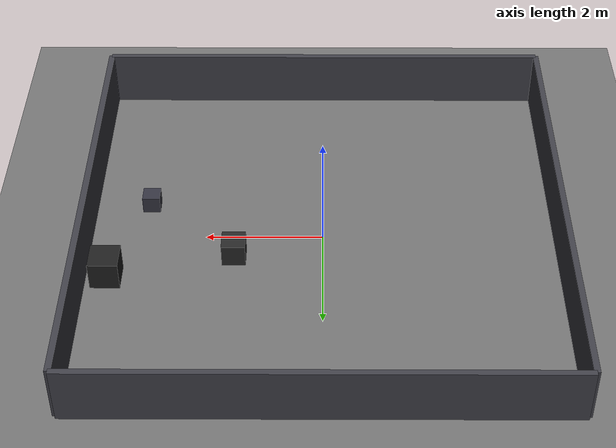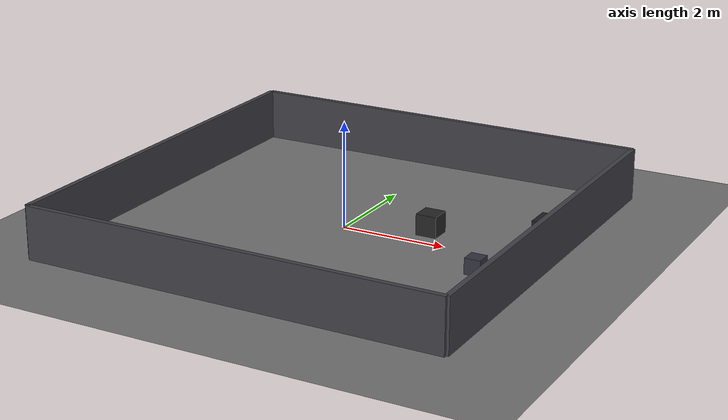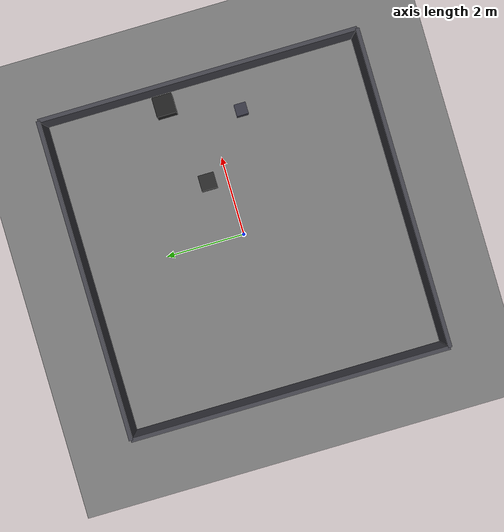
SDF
<?xml version="1.0"?>
<sdf version="1.6">
  <world name="dim_course">

    <!-- ========== Gazebo Sim 系统插件 ========== -->
    <plugin filename="gz-sim-physics-system"
            name="gz::sim::systems::Physics"/>
    <plugin filename="gz-sim-user-commands-system"
            name="gz::sim::systems::UserCommands"/>
    <plugin filename="gz-sim-scene-broadcaster-system"
            name="gz::sim::systems::SceneBroadcaster"/>
    <!-- 相机/激光雷达等渲染传感器必须由 Sensors 系统插件驱动 -->
    <plugin filename="gz-sim-sensors-system"
            name="gz::sim::systems::Sensors">
      <render_engine>ogre2</render_engine>
    </plugin>

    <!-- ========== 物理与光照 ========== -->
    <physics type="ignored">
      <max_step_size>0.001</max_step_size>
      <real_time_factor>1.0</real_time_factor>
    </physics>

    <light name="sun" type="directional">
      <cast_shadows>true</cast_shadows>
      <pose>0 0 10 0 0 0</pose>
      <diffuse>0.35 0.35 0.35 1</diffuse>
      <specular>0.05 0.05 0.05 1</specular>
      <direction>-0.5 0.1 -0.9</direction>
    </light>

    <!-- ========== 地面（浅色，材质与基线一致） ========== -->
    <model name="ground_plane">
      <static>true</static>
      <link name="link">
        <collision name="collision">
          <geometry>
            <plane>
              <normal>0 0 1</normal>
              <size>20 20</size>
            </plane>
          </geometry>
        </collision>
        <visual name="visual">
          <geometry>
            <plane>
              <normal>0 0 1</normal>
              <size>20 20</size>
            </plane>
          </geometry>
          <material>
            <ambient>0.45 0.45 0.45 1</ambient>
            <diffuse>0.45 0.45 0.45 1</diffuse>
            <emissive>0.45 0.45 0.45 1</emissive>
          </material>
        </visual>
      </link>
    </model>

    <!-- ========== 四面围墙（深色） ========== -->
    <model name="wall_north">
      <static>true</static>
      <pose>0 4 0.5 0 0 0</pose>
      <link name="link">
        <collision name="c"><geometry><box><size>8 0.1 1.0</size></box></geometry></collision>
        <visual name="v">
          <geometry><box><size>8 0.1 1.0</size></box></geometry>
          <material><ambient>0.25 0.25 0.28 1</ambient><diffuse>0.25 0.25 0.28 1</diffuse></material>
        </visual>
      </link>
    </model>

    <model name="wall_south">
      <static>true</static>
      <pose>0 -4 0.5 0 0 0</pose>
      <link name="link">
        <collision name="c"><geometry><box><size>8 0.1 1.0</size></box></geometry></collision>
        <visual name="v">
          <geometry><box><size>8 0.1 1.0</size></box></geometry>
          <material><ambient>0.25 0.25 0.28 1</ambient><diffuse>0.25 0.25 0.28 1</diffuse></material>
        </visual>
      </link>
    </model>

    <model name="wall_west">
      <static>true</static>
      <pose>-4 0 0.5 0 0 0</pose>
      <link name="link">
        <collision name="c"><geometry><box><size>0.1 8 1.0</size></box></geometry></collision>
        <visual name="v">
          <geometry><box><size>0.1 8 1.0</size></box></geometry>
          <material><ambient>0.25 0.25 0.28 1</ambient><diffuse>0.25 0.25 0.28 1</diffuse></material>
        </visual>
      </link>
    </model>

    <model name="wall_east">
      <static>true</static>
      <pose>4 0 0.5 0 0 0</pose>
      <link name="link">
        <collision name="c"><geometry><box><size>0.1 8 1.0</size></box></geometry></collision>
        <visual name="v">
          <geometry><box><size>0.1 8 1.0</size></box></geometry>
          <material><ambient>0.25 0.25 0.28 1</ambient><diffuse>0.25 0.25 0.28 1</diffuse></material>
        </visual>
      </link>
    </model>

    <!-- ========== 三个障碍箱（深色，位置与基线一致） ========== -->
    <model name="box_a">
      <pose>1.5 0.5 0.2 0 0 0</pose>
      <link name="link">
        <collision name="c"><geometry><box><size>0.4 0.4 0.4</size></box></geometry></collision>
        <visual name="v">
          <geometry><box><size>0.4 0.4 0.4</size></box></geometry>
          <material><ambient>0.15 0.15 0.15 1</ambient><diffuse>0.15 0.15 0.15 1</diffuse></material>
        </visual>
      </link>
    </model>

    <model name="box_b">
      <pose>3.0 -0.8 0.15 0 0 0</pose>
      <link name="link">
        <collision name="c"><geometry><box><size>0.3 0.3 0.3</size></box></geometry></collision>
        <visual name="v">
          <geometry><box><size>0.3 0.3 0.3</size></box></geometry>
          <material><ambient>0.2 0.2 0.25 1</ambient><diffuse>0.2 0.2 0.25 1</diffuse></material>
        </visual>
      </link>
    </model>

    <model name="box_c">
      <pose>3.6 1.0 0.25 0 0 0</pose>
      <link name="link">
        <collision name="c"><geometry><box><size>0.5 0.5 0.5</size></box></geometry></collision>
        <visual name="v">
          <geometry><box><size>0.5 0.5 0.5</size></box></geometry>
          <material><ambient>0.12 0.12 0.12 1</ambient><diffuse>0.12 0.12 0.12 1</diffuse></material>
        </visual>
      </link>
    </model>

  </world>
</sdf>
